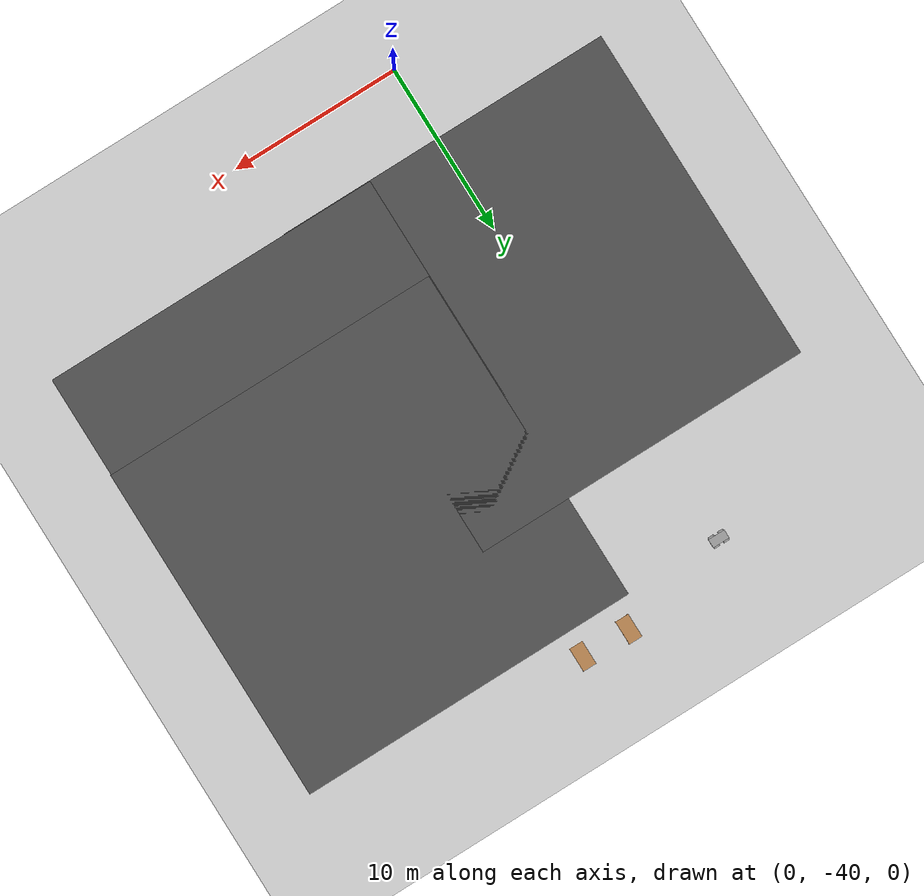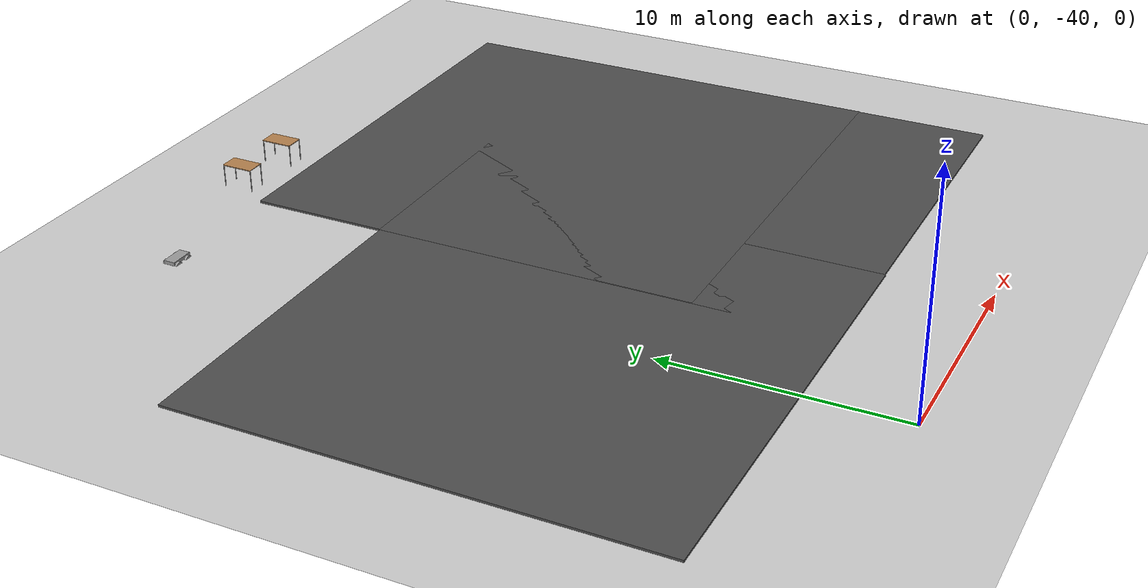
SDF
<sdf version="1.6">
 <world name="default">
  <model name="ground_plane">
   <static>1</static>
   <link name="link">
    <collision name="collision">
     <geometry><plane><normal>0 0 1</normal><size>100 100</size></plane></geometry>
     <surface><friction><ode><mu>100</mu><mu2>50</mu2></ode></friction></surface>
    </collision>
    <visual name="visual">
     <cast_shadows>0</cast_shadows>
     <geometry><plane><normal>0 0 1</normal><size>100 100</size></plane></geometry>
     <material>
      <script><uri>file://media/materials/scripts/gazebo.material</uri><name>Gazebo/Grey</name></script>
     </material>
    </visual>
   </link>
  </model>
  <model name="table_0_clone">
   <static>0</static>
   <link name="link">
    <collision name="surface">
     <pose>0 0 1 0 -0 0</pose>
     <geometry><box><size>1.5 0.8 0.03</size></box></geometry>
     <surface><friction><ode><mu>0.6</mu><mu2>0.6</mu2></ode></friction></surface>
    </collision>
    <visual name="visual1">
     <pose>0 0 1 0 -0 0</pose>
     <geometry><box><size>1.4 0.8 0.04</size></box></geometry>
     <material>
      <script><uri>file://media/materials/scripts/gazebo.material</uri><name>Gazebo/Wood</name></script>
     </material>
    </visual>
    <collision name="front_left_leg">
     <pose>0.68 0.38 0.5 0 -0 0</pose>
     <geometry><cylinder><radius>0.02</radius><length>1</length></cylinder></geometry>
    </collision>
    <visual name="front_left_leg">
     <pose>0.68 0.38 0.5 0 -0 0</pose>
     <geometry><cylinder><radius>0.02</radius><length>1</length></cylinder></geometry>
     <material>
      <script><uri>file://media/materials/scripts/gazebo.material</uri><name>Gazebo/Grey</name></script>
     </material>
    </visual>
    <collision name="front_right_leg">
     <pose>0.68 -0.38 0.5 0 -0 0</pose>
     <geometry><cylinder><radius>0.02</radius><length>1</length></cylinder></geometry>
    </collision>
    <visual name="front_right_leg">
     <pose>0.68 -0.38 0.5 0 -0 0</pose>
     <geometry><cylinder><radius>0.02</radius><length>1</length></cylinder></geometry>
     <material>
      <script><uri>file://media/materials/scripts/gazebo.material</uri><name>Gazebo/Grey</name></script>
     </material>
    </visual>
    <collision name="back_right_leg">
     <pose>-0.68 -0.38 0.5 0 -0 0</pose>
     <geometry><cylinder><radius>0.02</radius><length>1</length></cylinder></geometry>
    </collision>
    <visual name="back_right_leg">
     <pose>-0.68 -0.38 0.5 0 -0 0</pose>
     <geometry><cylinder><radius>0.02</radius><length>1</length></cylinder></geometry>
     <material>
      <script><uri>file://media/materials/scripts/gazebo.material</uri><name>Gazebo/Grey</name></script>
     </material>
    </visual>
    <collision name="back_left_leg">
     <pose>-0.68 0.38 0.5 0 -0 0</pose>
     <geometry><cylinder><radius>0.02</radius><length>1</length></cylinder></geometry>
    </collision>
    <visual name="back_left_leg">
     <pose>-0.68 0.38 0.5 0 -0 0</pose>
     <geometry><cylinder><radius>0.02</radius><length>1</length></cylinder></geometry>
     <material>
      <script><uri>file://media/materials/scripts/gazebo.material</uri><name>Gazebo/Grey</name></script>
     </material>
    </visual>
    <inertial>
     <inertia><ixx>1</ixx><ixy>0</ixy><ixz>0</ixz><iyy>1</iyy><iyz>0</iyz><izz>1</izz></inertia>
     <mass>1</mass>
    </inertial>
   </link>
   <pose>8.1263 -8.22035 0 0 -0 1.57079</pose>
  </model>
  <model name="table_0_clone_0_clone_0">
   <static>0</static>
   <link name="link">
    <collision name="surface">
     <pose>0 0 1 0 -0 0</pose>
     <geometry><box><size>1.5 0.8 0.03</size></box></geometry>
     <surface><friction><ode><mu>0.6</mu><mu2>0.6</mu2></ode></friction></surface>
    </collision>
    <visual name="visual1">
     <pose>0 0 1 0 -0 0</pose>
     <geometry><box><size>1.4 0.8 0.04</size></box></geometry>
     <material>
      <script><uri>file://media/materials/scripts/gazebo.material</uri><name>Gazebo/Wood</name></script>
     </material>
    </visual>
    <collision name="front_left_leg">
     <pose>0.68 0.38 0.5 0 -0 0</pose>
     <geometry><cylinder><radius>0.02</radius><length>1</length></cylinder></geometry>
    </collision>
    <visual name="front_left_leg">
     <pose>0.68 0.38 0.5 0 -0 0</pose>
     <geometry><cylinder><radius>0.02</radius><length>1</length></cylinder></geometry>
     <material>
      <script><uri>file://media/materials/scripts/gazebo.material</uri><name>Gazebo/Grey</name></script>
     </material>
    </visual>
    <collision name="front_right_leg">
     <pose>0.68 -0.38 0.5 0 -0 0</pose>
     <geometry><cylinder><radius>0.02</radius><length>1</length></cylinder></geometry>
    </collision>
    <visual name="front_right_leg">
     <pose>0.68 -0.38 0.5 0 -0 0</pose>
     <geometry><cylinder><radius>0.02</radius><length>1</length></cylinder></geometry>
     <material>
      <script><uri>file://media/materials/scripts/gazebo.material</uri><name>Gazebo/Grey</name></script>
     </material>
    </visual>
    <collision name="back_right_leg">
     <pose>-0.68 -0.38 0.5 0 -0 0</pose>
     <geometry><cylinder><radius>0.02</radius><length>1</length></cylinder></geometry>
    </collision>
    <visual name="back_right_leg">
     <pose>-0.68 -0.38 0.5 0 -0 0</pose>
     <geometry><cylinder><radius>0.02</radius><length>1</length></cylinder></geometry>
     <material>
      <script><uri>file://media/materials/scripts/gazebo.material</uri><name>Gazebo/Grey</name></script>
     </material>
    </visual>
    <collision name="back_left_leg">
     <pose>-0.68 0.38 0.5 0 -0 0</pose>
     <geometry><cylinder><radius>0.02</radius><length>1</length></cylinder></geometry>
    </collision>
    <visual name="back_left_leg">
     <pose>-0.68 0.38 0.5 0 -0 0</pose>
     <geometry><cylinder><radius>0.02</radius><length>1</length></cylinder></geometry>
     <material>
      <script><uri>file://media/materials/scripts/gazebo.material</uri><name>Gazebo/Grey</name></script>
     </material>
    </visual>
    <inertial>
     <inertia><ixx>1</ixx><ixy>0</ixy><ixz>0</ixz><iyy>1</iyy><iyz>0</iyz><izz>1</izz></inertia>
     <mass>1</mass>
    </inertial>
   </link>
   <pose>5.30131 -8.14232 0 0 -0 1.57081</pose>
  </model>
  <model name="asphalt_plane">
   <static>1</static>
   <link name="link">
    <collision name="collision"><geometry><box><size>20 20 0.1</size></box></geometry></collision>
    <visual name="visual">
     <cast_shadows>0</cast_shadows>
     <geometry><box><size>20 20 0.1</size></box></geometry>
     <material>
      <script>
       <uri>model://asphalt_plane/materials/scripts</uri>
       <uri>model://asphalt_plane/materials/textures</uri>
       <name>vrc/asphalt</name>
      </script>
     </material>
    </visual>
   </link>
   <pose>-0.343897 -25.6982 0 0 -0 0</pose>
  </model>
  <model name="asphalt_plane_0">
   <static>1</static>
   <link name="link">
    <collision name="collision"><geometry><box><size>20 20 0.1</size></box></geometry></collision>
    <visual name="visual">
     <cast_shadows>0</cast_shadows>
     <geometry><box><size>20 20 0.1</size></box></geometry>
     <material>
      <script>
       <uri>model://asphalt_plane/materials/scripts</uri>
       <uri>model://asphalt_plane/materials/textures</uri>
       <name>vrc/asphalt</name>
      </script>
     </material>
    </visual>
   </link>
   <pose>14.2845 -19.6978 0 0 -0 0</pose>
  </model>
  <model name="asphalt_plane_1">
   <static>1</static>
   <link name="link">
    <collision name="collision"><geometry><box><size>20 20 0.1</size></box></geometry></collision>
    <visual name="visual">
     <cast_shadows>0</cast_shadows>
     <geometry><box><size>20 20 0.1</size></box></geometry>
     <material>
      <script>
       <uri>model://asphalt_plane/materials/scripts</uri>
       <uri>model://asphalt_plane/materials/textures</uri>
       <name>vrc/asphalt</name>
      </script>
     </material>
    </visual>
   </link>
   <pose>14.2438 -25.6641 0 0 -0 0</pose>
  </model>
  <model name="Wheely_3">
   <link name="link_0">
    <inertial>
     <mass>1</mass>
     <inertia>
      <ixx>0.166667</ixx>
      <ixy>0</ixy>
      <ixz>0</ixz>
      <iyy>0.166667</iyy>
      <iyz>0</iyz>
      <izz>0.166667</izz>
     </inertia>
    </inertial>
    <pose>-0 0.001523 -0.04 0 -0 0</pose>
    <visual name="visual">
     <geometry><box><size>1 0.5 0.3</size></box></geometry>
     <material>
      <lighting>1</lighting>
      <script><uri>file://media/materials/scripts/gazebo.material</uri><name>Gazebo/Grey</name></script>
      <shader type="vertex"><normal_map>__default__</normal_map></shader>
      <ambient>0.3 0.3 0.3 1</ambient>
      <diffuse>0.7 0.7 0.7 1</diffuse>
      <specular>0.01 0.01 0.01 1</specular>
      <emissive>0 0 0 1</emissive>
     </material>
    </visual>
    <collision name="collision">
     <geometry><box><size>1 0.5 0.3</size></box></geometry>
     <surface>
      <friction>
       <ode><mu>1</mu><mu2>1</mu2><fdir1>0 0 0</fdir1><slip1>0</slip1><slip2>0</slip2></ode>
       <torsional>
        <coefficient>1</coefficient>
        <patch_radius>0</patch_radius>
        <surface_radius>0</surface_radius>
        <use_patch_radius>1</use_patch_radius>
        <ode><slip>0</slip></ode>
       </torsional>
      </friction>
      <bounce><restitution_coefficient>0</restitution_coefficient><threshold>1e+06</threshold></bounce>
      <contact>
       <collide_without_contact>0</collide_without_contact>
       <collide_without_contact_bitmask>1</collide_without_contact_bitmask>
       <collide_bitmask>1</collide_bitmask>
       <ode>
        <soft_cfm>0</soft_cfm>
        <soft_erp>0.2</soft_erp>
        <kp>1e+13</kp>
        <kd>1</kd>
        <max_vel>0.01</max_vel>
        <min_depth>0</min_depth>
       </ode>
       <bullet>
        <split_impulse>1</split_impulse>
        <split_impulse_penetration_threshold>-0.01</split_impulse_penetration_threshold>
        <soft_cfm>0</soft_cfm>
        <soft_erp>0.2</soft_erp>
        <kp>1e+13</kp>
        <kd>1</kd>
       </bullet>
      </contact>
     </surface>
    </collision>
   </link>
   <link name="link_1_clone_0">
    <inertial>
     <mass>1</mass>
     <inertia><ixx>0.145833</ixx><ixy>0</ixy><ixz>0</ixz><iyy>0.145833</iyy><iyz>0</iyz><izz>0.125</izz></inertia>
    </inertial>
    <pose>0.3 -0.298496 -0.14 1.5707 -0 0</pose>
    <visual name="visual">
     <geometry><cylinder><radius>0.2</radius><length>0.1</length></cylinder></geometry>
     <material>
      <lighting>1</lighting>
      <script><uri>file://media/materials/scripts/gazebo.material</uri><name>Gazebo/Grey</name></script>
      <shader type="vertex"><normal_map>__default__</normal_map></shader>
      <ambient>0.3 0.3 0.3 1</ambient>
      <diffuse>0.7 0.7 0.7 1</diffuse>
      <specular>0.01 0.01 0.01 1</specular>
      <emissive>0 0 0 1</emissive>
     </material>
    </visual>
    <collision name="collision">
     <geometry><cylinder><radius>0.2</radius><length>0.1</length></cylinder></geometry>
     <surface>
      <friction>
       <ode><mu>1</mu><mu2>1</mu2><fdir1>0 0 0</fdir1><slip1>0</slip1><slip2>0</slip2></ode>
       <torsional>
        <coefficient>1</coefficient>
        <patch_radius>0</patch_radius>
        <surface_radius>0</surface_radius>
        <use_patch_radius>1</use_patch_radius>
        <ode><slip>0</slip></ode>
       </torsional>
      </friction>
      <bounce><restitution_coefficient>0</restitution_coefficient><threshold>1e+06</threshold></bounce>
      <contact>
       <collide_without_contact>0</collide_without_contact>
       <collide_without_contact_bitmask>1</collide_without_contact_bitmask>
       <collide_bitmask>1</collide_bitmask>
       <ode>
        <soft_cfm>0</soft_cfm>
        <soft_erp>0.2</soft_erp>
        <kp>1e+13</kp>
        <kd>1</kd>
        <max_vel>0.01</max_vel>
        <min_depth>0</min_depth>
       </ode>
       <bullet>
        <split_impulse>1</split_impulse>
        <split_impulse_penetration_threshold>-0.01</split_impulse_penetration_threshold>
        <soft_cfm>0</soft_cfm>
        <soft_erp>0.2</soft_erp>
        <kp>1e+13</kp>
        <kd>1</kd>
       </bullet>
      </contact>
     </surface>
    </collision>
   </link>
   <link name="link_1_clone_1">
    <inertial>
     <mass>1</mass>
     <inertia><ixx>0.145833</ixx><ixy>0</ixy><ixz>0</ixz><iyy>0.145833</iyy><iyz>0</iyz><izz>0.125</izz></inertia>
    </inertial>
    <pose>-0.3 -0.298496 -0.14 1.5707 -0 0</pose>
    <visual name="visual">
     <geometry><cylinder><radius>0.2</radius><length>0.1</length></cylinder></geometry>
     <material>
      <lighting>1</lighting>
      <script><uri>file://media/materials/scripts/gazebo.material</uri><name>Gazebo/Grey</name></script>
      <shader type="vertex"><normal_map>__default__</normal_map></shader>
      <ambient>0.3 0.3 0.3 1</ambient>
      <diffuse>0.7 0.7 0.7 1</diffuse>
      <specular>0.01 0.01 0.01 1</specular>
      <emissive>0 0 0 1</emissive>
     </material>
    </visual>
    <collision name="collision">
     <geometry><cylinder><radius>0.2</radius><length>0.1</length></cylinder></geometry>
     <surface>
      <friction>
       <ode><mu>1</mu><mu2>1</mu2><fdir1>0 0 0</fdir1><slip1>0</slip1><slip2>0</slip2></ode>
       <torsional>
        <coefficient>1</coefficient>
        <patch_radius>0</patch_radius>
        <surface_radius>0</surface_radius>
        <use_patch_radius>1</use_patch_radius>
        <ode><slip>0</slip></ode>
       </torsional>
      </friction>
      <bounce><restitution_coefficient>0</restitution_coefficient><threshold>1e+06</threshold></bounce>
      <contact>
       <collide_without_contact>0</collide_without_contact>
       <collide_without_contact_bitmask>1</collide_without_contact_bitmask>
       <collide_bitmask>1</collide_bitmask>
       <ode>
        <soft_cfm>0</soft_cfm>
        <soft_erp>0.2</soft_erp>
        <kp>1e+13</kp>
        <kd>1</kd>
        <max_vel>0.01</max_vel>
        <min_depth>0</min_depth>
       </ode>
       <bullet>
        <split_impulse>1</split_impulse>
        <split_impulse_penetration_threshold>-0.01</split_impulse_penetration_threshold>
        <soft_cfm>0</soft_cfm>
        <soft_erp>0.2</soft_erp>
        <kp>1e+13</kp>
        <kd>1</kd>
       </bullet>
      </contact>
     </surface>
    </collision>
   </link>
   <link name="link_1_clone_1_clone">
    <inertial>
     <mass>1</mass>
     <inertia><ixx>0.145833</ixx><ixy>0</ixy><ixz>0</ixz><iyy>0.145833</iyy><iyz>0</iyz><izz>0.125</izz></inertia>
    </inertial>
    <pose>0.3 0.293927 -0.14 1.5707 -0 0</pose>
    <visual name="visual">
     <geometry><cylinder><radius>0.2</radius><length>0.1</length></cylinder></geometry>
     <material>
      <lighting>1</lighting>
      <script><uri>file://media/materials/scripts/gazebo.material</uri><name>Gazebo/Grey</name></script>
      <shader type="vertex"><normal_map>__default__</normal_map></shader>
      <ambient>0.3 0.3 0.3 1</ambient>
      <diffuse>0.7 0.7 0.7 1</diffuse>
      <specular>0.01 0.01 0.01 1</specular>
      <emissive>0 0 0 1</emissive>
     </material>
    </visual>
    <collision name="collision">
     <geometry><cylinder><radius>0.2</radius><length>0.1</length></cylinder></geometry>
     <surface>
      <friction>
       <ode><mu>1</mu><mu2>1</mu2><fdir1>0 0 0</fdir1><slip1>0</slip1><slip2>0</slip2></ode>
       <torsional>
        <coefficient>1</coefficient>
        <patch_radius>0</patch_radius>
        <surface_radius>0</surface_radius>
        <use_patch_radius>1</use_patch_radius>
        <ode><slip>0</slip></ode>
       </torsional>
      </friction>
      <bounce><restitution_coefficient>0</restitution_coefficient><threshold>1e+06</threshold></bounce>
      <contact>
       <collide_without_contact>0</collide_without_contact>
       <collide_without_contact_bitmask>1</collide_without_contact_bitmask>
       <collide_bitmask>1</collide_bitmask>
       <ode>
        <soft_cfm>0</soft_cfm>
        <soft_erp>0.2</soft_erp>
        <kp>1e+13</kp>
        <kd>1</kd>
        <max_vel>0.01</max_vel>
        <min_depth>0</min_depth>
       </ode>
       <bullet>
        <split_impulse>1</split_impulse>
        <split_impulse_penetration_threshold>-0.01</split_impulse_penetration_threshold>
        <soft_cfm>0</soft_cfm>
        <soft_erp>0.2</soft_erp>
        <kp>1e+13</kp>
        <kd>1</kd>
       </bullet>
      </contact>
     </surface>
    </collision>
   </link>
   <link name="link_1_clone_1_clone_0">
    <inertial>
     <mass>1</mass>
     <inertia><ixx>0.145833</ixx><ixy>0</ixy><ixz>0</ixz><iyy>0.145833</iyy><iyz>0</iyz><izz>0.125</izz></inertia>
    </inertial>
    <pose>-0.3 0.301542 -0.14 1.5707 -0 0</pose>
    <visual name="visual">
     <geometry><cylinder><radius>0.2</radius><length>0.1</length></cylinder></geometry>
     <material>
      <lighting>1</lighting>
      <script><uri>file://media/materials/scripts/gazebo.material</uri><name>Gazebo/Grey</name></script>
      <shader type="vertex"><normal_map>__default__</normal_map></shader>
      <ambient>0.3 0.3 0.3 1</ambient>
      <diffuse>0.7 0.7 0.7 1</diffuse>
      <specular>0.01 0.01 0.01 1</specular>
      <emissive>0 0 0 1</emissive>
     </material>
    </visual>
    <collision name="collision">
     <geometry><cylinder><radius>0.2</radius><length>0.1</length></cylinder></geometry>
     <surface>
      <friction>
       <ode><mu>1</mu><mu2>1</mu2><fdir1>0 0 0</fdir1><slip1>0</slip1><slip2>0</slip2></ode>
       <torsional>
        <coefficient>1</coefficient>
        <patch_radius>0</patch_radius>
        <surface_radius>0</surface_radius>
        <use_patch_radius>1</use_patch_radius>
        <ode><slip>0</slip></ode>
       </torsional>
      </friction>
      <bounce><restitution_coefficient>0</restitution_coefficient><threshold>1e+06</threshold></bounce>
      <contact>
       <collide_without_contact>0</collide_without_contact>
       <collide_without_contact_bitmask>1</collide_without_contact_bitmask>
       <collide_bitmask>1</collide_bitmask>
       <ode>
        <soft_cfm>0</soft_cfm>
        <soft_erp>0.2</soft_erp>
        <kp>1e+13</kp>
        <kd>1</kd>
        <max_vel>0.01</max_vel>
        <min_depth>0</min_depth>
       </ode>
       <bullet>
        <split_impulse>1</split_impulse>
        <split_impulse_penetration_threshold>-0.01</split_impulse_penetration_threshold>
        <soft_cfm>0</soft_cfm>
        <soft_erp>0.2</soft_erp>
        <kp>1e+13</kp>
        <kd>1</kd>
       </bullet>
      </contact>
     </surface>
    </collision>
   </link>
   <joint name="link_0_JOINT_1" type="revolute">
    <parent>link_0</parent>
    <child>link_1_clone_0</child>
    <axis>
     <xyz>0 0 1</xyz>
     <use_parent_model_frame>0</use_parent_model_frame>
     <limit>
      <lower>-1.79769e+308</lower>
      <upper>1.79769e+308</upper>
      <effort>-1</effort>
      <velocity>-1</velocity>
     </limit>
     <dynamics>
      <spring_reference>0</spring_reference>
      <spring_stiffness>0</spring_stiffness>
      <damping>0</damping>
      <friction>0</friction>
     </dynamics>
    </axis>
    <physics>
     <ode><limit><cfm>0</cfm><erp>0.2</erp></limit><suspension><cfm>0</cfm><erp>0.2</erp></suspension></ode>
    </physics>
   </joint>
   <joint name="link_0_JOINT_4" type="revolute">
    <parent>link_0</parent>
    <child>link_1_clone_1</child>
    <axis>
     <xyz>0 0 1</xyz>
     <use_parent_model_frame>0</use_parent_model_frame>
     <limit>
      <lower>-1.79769e+308</lower>
      <upper>1.79769e+308</upper>
      <effort>-1</effort>
      <velocity>-1</velocity>
     </limit>
     <dynamics>
      <spring_reference>0</spring_reference>
      <spring_stiffness>0</spring_stiffness>
      <damping>0</damping>
      <friction>0</friction>
     </dynamics>
    </axis>
    <physics>
     <ode><limit><cfm>0</cfm><erp>0.2</erp></limit><suspension><cfm>0</cfm><erp>0.2</erp></suspension></ode>
    </physics>
   </joint>
   <joint name="link_0_JOINT_5" type="revolute">
    <parent>link_0</parent>
    <child>link_1_clone_1_clone</child>
    <axis>
     <xyz>0 0 1</xyz>
     <use_parent_model_frame>0</use_parent_model_frame>
     <limit>
      <lower>-1.79769e+308</lower>
      <upper>1.79769e+308</upper>
      <effort>-1</effort>
      <velocity>-1</velocity>
     </limit>
     <dynamics>
      <spring_reference>0</spring_reference>
      <spring_stiffness>0</spring_stiffness>
      <damping>0</damping>
      <friction>0</friction>
     </dynamics>
    </axis>
    <physics>
     <ode><limit><cfm>0</cfm><erp>0.2</erp></limit><suspension><cfm>0</cfm><erp>0.2</erp></suspension></ode>
    </physics>
   </joint>
   <joint name="link_0_JOINT_6" type="revolute">
    <parent>link_0</parent>
    <child>link_1_clone_1_clone_0</child>
    <axis>
     <xyz>0 0 1</xyz>
     <use_parent_model_frame>0</use_parent_model_frame>
     <limit>
      <lower>-1.79769e+308</lower>
      <upper>1.79769e+308</upper>
      <effort>-1</effort>
      <velocity>-1</velocity>
     </limit>
     <dynamics>
      <spring_reference>0</spring_reference>
      <spring_stiffness>0</spring_stiffness>
      <damping>0</damping>
      <friction>0</friction>
     </dynamics>
    </axis>
    <physics>
     <ode><limit><cfm>0</cfm><erp>0.2</erp></limit><suspension><cfm>0</cfm><erp>0.2</erp></suspension></ode>
    </physics>
   </joint>
   <static>0</static>
   <pose>-1.34306 -9.63715 0 0 -0 0</pose>
  </model>
 </world>
</sdf>
